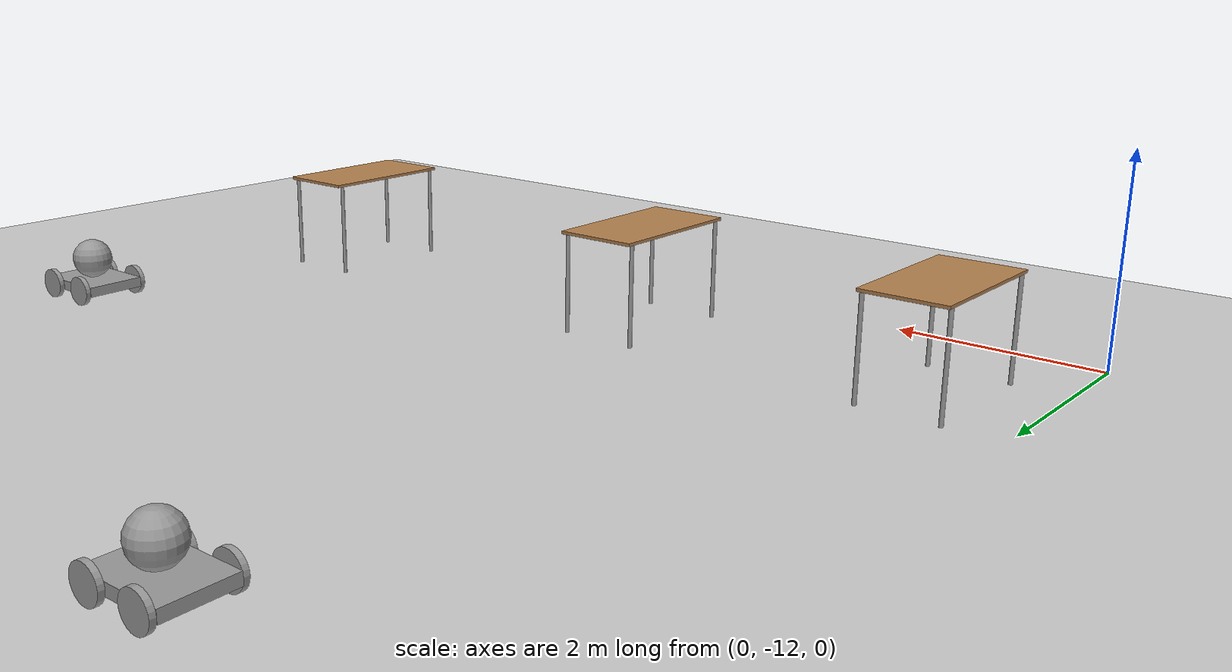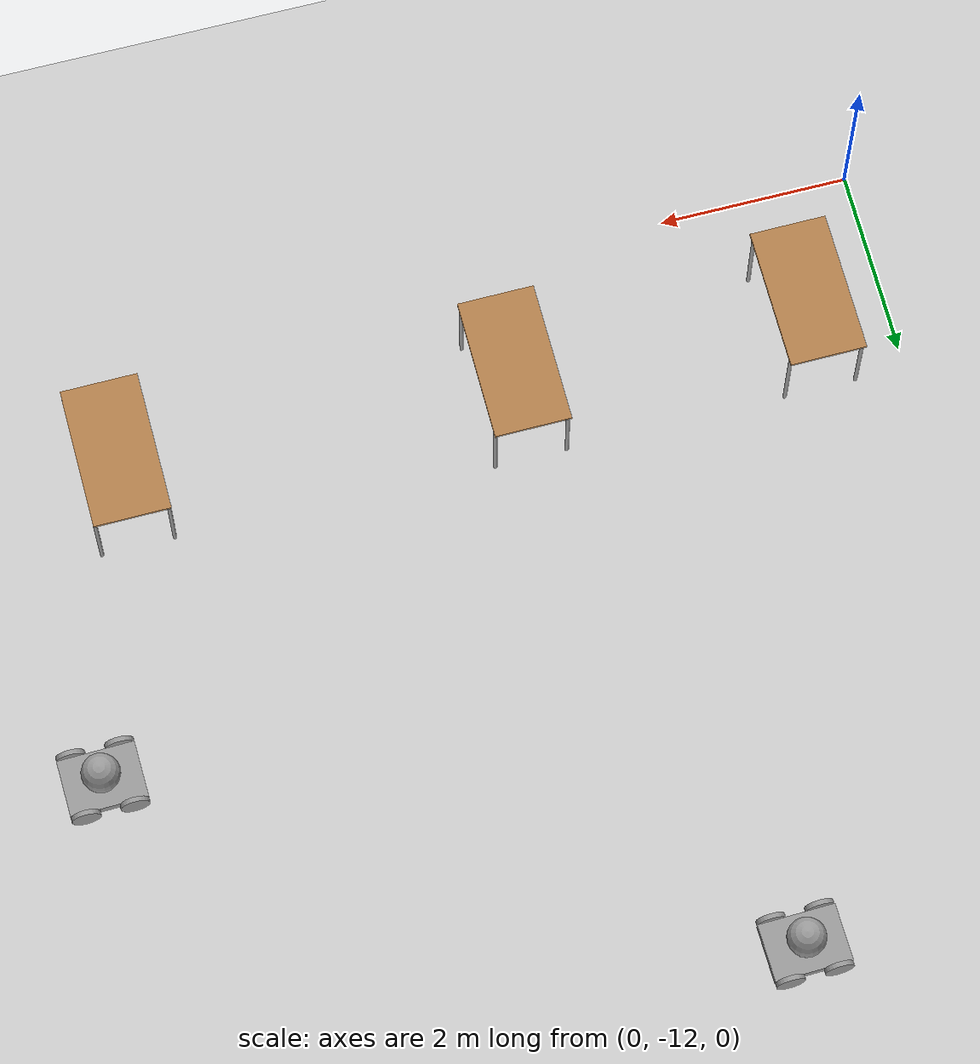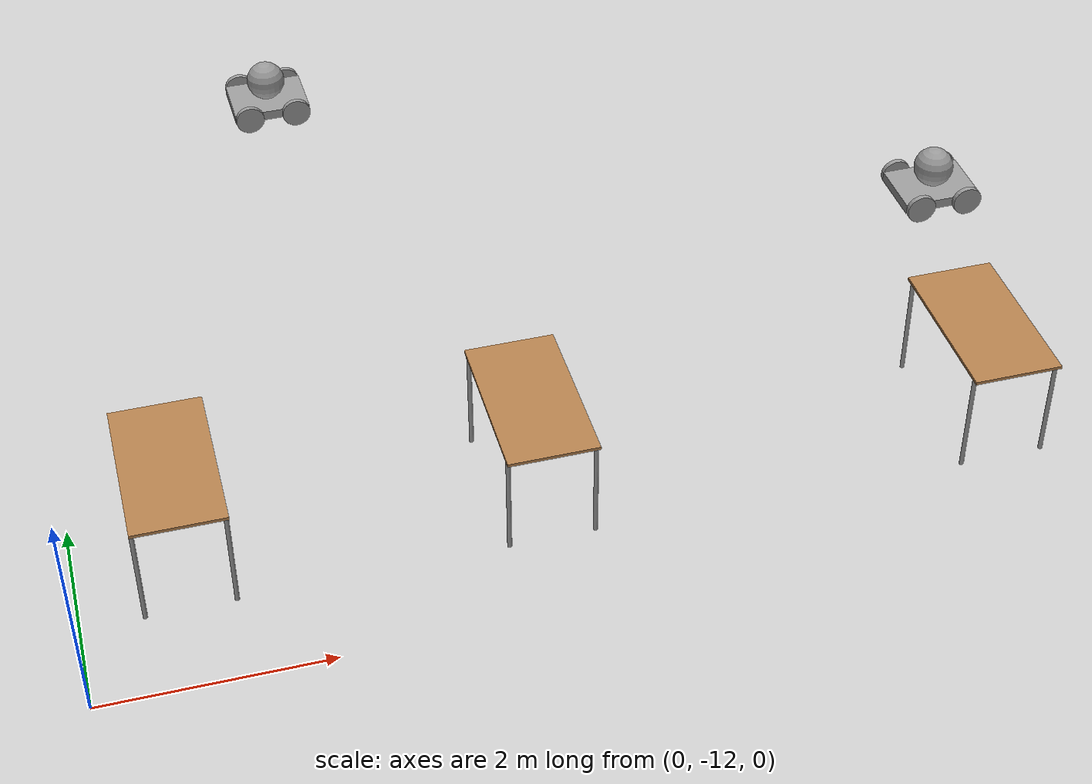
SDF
<sdf version="1.6">
 <world name="default">
  <model name="ground_plane">
   <static>1</static>
   <link name="link">
    <collision name="collision">
     <geometry><plane><normal>0 0 1</normal><size>100 100</size></plane></geometry>
     <surface>
      <contact><collide_bitmask>65535</collide_bitmask></contact>
      <friction><ode><mu>100</mu><mu2>50</mu2></ode></friction>
     </surface>
    </collision>
    <visual name="visual">
     <cast_shadows>0</cast_shadows>
     <geometry><plane><normal>0 0 1</normal><size>100 100</size></plane></geometry>
     <material>
      <script><uri>file://media/materials/scripts/gazebo.material</uri><name>Gazebo/Grey</name></script>
     </material>
    </visual>
   </link>
  </model>
  <model name="HumanoidRobot">
   <link name="link_0">
    <pose>0 0 -0.041667 0 -0 0</pose>
    <inertial>
     <mass>1</mass>
     <inertia>
      <ixx>0.166667</ixx>
      <ixy>0</ixy>
      <ixz>0</ixz>
      <iyy>0.166667</iyy>
      <iyz>0</iyz>
      <izz>0.166667</izz>
     </inertia>
    </inertial>
    <visual name="visual">
     <geometry><box><size>0.8 0.6 0.1</size></box></geometry>
     <material>
      <lighting>1</lighting>
      <script><uri>file://media/materials/scripts/gazebo.material</uri><name>Gazebo/Grey</name></script>
      <shader type="pixel"><normal_map>__default__</normal_map></shader>
      <ambient>0.3 0.3 0.3 1</ambient>
      <diffuse>0.7 0.7 0.7 1</diffuse>
      <specular>0.01 0.01 0.01 1</specular>
      <emissive>0 0 0 1</emissive>
     </material>
    </visual>
    <collision name="collision">
     <geometry><box><size>0.8 0.6 0.1</size></box></geometry>
     <surface>
      <friction>
       <ode><mu>1</mu><mu2>1</mu2><fdir1>0 0 0</fdir1><slip1>0</slip1><slip2>0</slip2></ode>
       <torsional>
        <coefficient>1</coefficient>
        <patch_radius>0</patch_radius>
        <surface_radius>0</surface_radius>
        <use_patch_radius>1</use_patch_radius>
        <ode><slip>0</slip></ode>
       </torsional>
      </friction>
      <bounce><restitution_coefficient>0</restitution_coefficient><threshold>1e+06</threshold></bounce>
      <contact>
       <collide_without_contact>0</collide_without_contact>
       <collide_without_contact_bitmask>1</collide_without_contact_bitmask>
       <collide_bitmask>1</collide_bitmask>
       <ode>
        <soft_cfm>0</soft_cfm>
        <soft_erp>0.2</soft_erp>
        <kp>1e+13</kp>
        <kd>1</kd>
        <max_vel>0.01</max_vel>
        <min_depth>0</min_depth>
       </ode>
       <bullet>
        <split_impulse>1</split_impulse>
        <split_impulse_penetration_threshold>-0.01</split_impulse_penetration_threshold>
        <soft_cfm>0</soft_cfm>
        <soft_erp>0.2</soft_erp>
        <kp>1e+13</kp>
        <kd>1</kd>
       </bullet>
      </contact>
     </surface>
    </collision>
   </link>
   <link name="link_1">
    <pose>-0.25 -0.325014 -0.041667 1.5707 -0 0</pose>
    <inertial>
     <mass>1</mass>
     <inertia><ixx>0.145833</ixx><ixy>0</ixy><ixz>0</ixz><iyy>0.145833</iyy><iyz>0</iyz><izz>0.125</izz></inertia>
    </inertial>
    <visual name="visual">
     <geometry><cylinder><radius>0.15</radius><length>0.05</length></cylinder></geometry>
     <material>
      <lighting>1</lighting>
      <script><uri>file://media/materials/scripts/gazebo.material</uri><name>Gazebo/Grey</name></script>
      <shader type="pixel"><normal_map>__default__</normal_map></shader>
      <ambient>0.3 0.3 0.3 1</ambient>
      <diffuse>0.7 0.7 0.7 1</diffuse>
      <specular>0.01 0.01 0.01 1</specular>
      <emissive>0 0 0 1</emissive>
     </material>
    </visual>
    <collision name="collision">
     <geometry><cylinder><radius>0.15</radius><length>0.05</length></cylinder></geometry>
     <surface>
      <friction>
       <ode><mu>1</mu><mu2>1</mu2><fdir1>0 0 0</fdir1><slip1>0</slip1><slip2>0</slip2></ode>
       <torsional>
        <coefficient>1</coefficient>
        <patch_radius>0</patch_radius>
        <surface_radius>0</surface_radius>
        <use_patch_radius>1</use_patch_radius>
        <ode><slip>0</slip></ode>
       </torsional>
      </friction>
      <bounce><restitution_coefficient>0</restitution_coefficient><threshold>1e+06</threshold></bounce>
      <contact>
       <collide_without_contact>0</collide_without_contact>
       <collide_without_contact_bitmask>1</collide_without_contact_bitmask>
       <collide_bitmask>1</collide_bitmask>
       <ode>
        <soft_cfm>0</soft_cfm>
        <soft_erp>0.2</soft_erp>
        <kp>1e+13</kp>
        <kd>1</kd>
        <max_vel>0.01</max_vel>
        <min_depth>0</min_depth>
       </ode>
       <bullet>
        <split_impulse>1</split_impulse>
        <split_impulse_penetration_threshold>-0.01</split_impulse_penetration_threshold>
        <soft_cfm>0</soft_cfm>
        <soft_erp>0.2</soft_erp>
        <kp>1e+13</kp>
        <kd>1</kd>
       </bullet>
      </contact>
     </surface>
    </collision>
   </link>
   <link name="link_1_clone">
    <pose>-0.25 0.325014 -0.041667 1.5707 -0 0</pose>
    <inertial>
     <mass>1</mass>
     <inertia><ixx>0.145833</ixx><ixy>0</ixy><ixz>0</ixz><iyy>0.145833</iyy><iyz>0</iyz><izz>0.125</izz></inertia>
    </inertial>
    <visual name="visual">
     <geometry><cylinder><radius>0.15</radius><length>0.05</length></cylinder></geometry>
     <material>
      <lighting>1</lighting>
      <script><uri>file://media/materials/scripts/gazebo.material</uri><name>Gazebo/Grey</name></script>
      <shader type="pixel"><normal_map>__default__</normal_map></shader>
      <ambient>0.3 0.3 0.3 1</ambient>
      <diffuse>0.7 0.7 0.7 1</diffuse>
      <specular>0.01 0.01 0.01 1</specular>
      <emissive>0 0 0 1</emissive>
     </material>
    </visual>
    <collision name="collision">
     <geometry><cylinder><radius>0.15</radius><length>0.05</length></cylinder></geometry>
     <surface>
      <friction>
       <ode><mu>1</mu><mu2>1</mu2><fdir1>0 0 0</fdir1><slip1>0</slip1><slip2>0</slip2></ode>
       <torsional>
        <coefficient>1</coefficient>
        <patch_radius>0</patch_radius>
        <surface_radius>0</surface_radius>
        <use_patch_radius>1</use_patch_radius>
        <ode><slip>0</slip></ode>
       </torsional>
      </friction>
      <bounce><restitution_coefficient>0</restitution_coefficient><threshold>1e+06</threshold></bounce>
      <contact>
       <collide_without_contact>0</collide_without_contact>
       <collide_without_contact_bitmask>1</collide_without_contact_bitmask>
       <collide_bitmask>1</collide_bitmask>
       <ode>
        <soft_cfm>0</soft_cfm>
        <soft_erp>0.2</soft_erp>
        <kp>1e+13</kp>
        <kd>1</kd>
        <max_vel>0.01</max_vel>
        <min_depth>0</min_depth>
       </ode>
       <bullet>
        <split_impulse>1</split_impulse>
        <split_impulse_penetration_threshold>-0.01</split_impulse_penetration_threshold>
        <soft_cfm>0</soft_cfm>
        <soft_erp>0.2</soft_erp>
        <kp>1e+13</kp>
        <kd>1</kd>
       </bullet>
      </contact>
     </surface>
    </collision>
   </link>
   <link name="link_1_clone_0">
    <pose>0.25 0.325014 -0.041667 1.5707 -0 0</pose>
    <inertial>
     <mass>1</mass>
     <inertia><ixx>0.145833</ixx><ixy>0</ixy><ixz>0</ixz><iyy>0.145833</iyy><iyz>0</iyz><izz>0.125</izz></inertia>
    </inertial>
    <visual name="visual">
     <geometry><cylinder><radius>0.15</radius><length>0.05</length></cylinder></geometry>
     <material>
      <lighting>1</lighting>
      <script><uri>file://media/materials/scripts/gazebo.material</uri><name>Gazebo/Grey</name></script>
      <shader type="pixel"><normal_map>__default__</normal_map></shader>
      <ambient>0.3 0.3 0.3 1</ambient>
      <diffuse>0.7 0.7 0.7 1</diffuse>
      <specular>0.01 0.01 0.01 1</specular>
      <emissive>0 0 0 1</emissive>
     </material>
    </visual>
    <collision name="collision">
     <geometry><cylinder><radius>0.15</radius><length>0.05</length></cylinder></geometry>
     <surface>
      <friction>
       <ode><mu>1</mu><mu2>1</mu2><fdir1>0 0 0</fdir1><slip1>0</slip1><slip2>0</slip2></ode>
       <torsional>
        <coefficient>1</coefficient>
        <patch_radius>0</patch_radius>
        <surface_radius>0</surface_radius>
        <use_patch_radius>1</use_patch_radius>
        <ode><slip>0</slip></ode>
       </torsional>
      </friction>
      <bounce><restitution_coefficient>0</restitution_coefficient><threshold>1e+06</threshold></bounce>
      <contact>
       <collide_without_contact>0</collide_without_contact>
       <collide_without_contact_bitmask>1</collide_without_contact_bitmask>
       <collide_bitmask>1</collide_bitmask>
       <ode>
        <soft_cfm>0</soft_cfm>
        <soft_erp>0.2</soft_erp>
        <kp>1e+13</kp>
        <kd>1</kd>
        <max_vel>0.01</max_vel>
        <min_depth>0</min_depth>
       </ode>
       <bullet>
        <split_impulse>1</split_impulse>
        <split_impulse_penetration_threshold>-0.01</split_impulse_penetration_threshold>
        <soft_cfm>0</soft_cfm>
        <soft_erp>0.2</soft_erp>
        <kp>1e+13</kp>
        <kd>1</kd>
       </bullet>
      </contact>
     </surface>
    </collision>
   </link>
   <link name="link_1_clone_1">
    <pose>0.25 -0.325014 -0.041667 1.5707 -0 0</pose>
    <inertial>
     <mass>1</mass>
     <inertia><ixx>0.145833</ixx><ixy>0</ixy><ixz>0</ixz><iyy>0.145833</iyy><iyz>0</iyz><izz>0.125</izz></inertia>
    </inertial>
    <visual name="visual">
     <geometry><cylinder><radius>0.15</radius><length>0.05</length></cylinder></geometry>
     <material>
      <lighting>1</lighting>
      <script><uri>file://media/materials/scripts/gazebo.material</uri><name>Gazebo/Grey</name></script>
      <shader type="pixel"><normal_map>__default__</normal_map></shader>
      <ambient>0.3 0.3 0.3 1</ambient>
      <diffuse>0.7 0.7 0.7 1</diffuse>
      <specular>0.01 0.01 0.01 1</specular>
      <emissive>0 0 0 1</emissive>
     </material>
    </visual>
    <collision name="collision">
     <geometry><cylinder><radius>0.15</radius><length>0.05</length></cylinder></geometry>
     <surface>
      <friction>
       <ode><mu>1</mu><mu2>1</mu2><fdir1>0 0 0</fdir1><slip1>0</slip1><slip2>0</slip2></ode>
       <torsional>
        <coefficient>1</coefficient>
        <patch_radius>0</patch_radius>
        <surface_radius>0</surface_radius>
        <use_patch_radius>1</use_patch_radius>
        <ode><slip>0</slip></ode>
       </torsional>
      </friction>
      <bounce><restitution_coefficient>0</restitution_coefficient><threshold>1e+06</threshold></bounce>
      <contact>
       <collide_without_contact>0</collide_without_contact>
       <collide_without_contact_bitmask>1</collide_without_contact_bitmask>
       <collide_bitmask>1</collide_bitmask>
       <ode>
        <soft_cfm>0</soft_cfm>
        <soft_erp>0.2</soft_erp>
        <kp>1e+13</kp>
        <kd>1</kd>
        <max_vel>0.01</max_vel>
        <min_depth>0</min_depth>
       </ode>
       <bullet>
        <split_impulse>1</split_impulse>
        <split_impulse_penetration_threshold>-0.01</split_impulse_penetration_threshold>
        <soft_cfm>0</soft_cfm>
        <soft_erp>0.2</soft_erp>
        <kp>1e+13</kp>
        <kd>1</kd>
       </bullet>
      </contact>
     </surface>
    </collision>
   </link>
   <link name="link_2">
    <pose>0 0 0.208333 0 -0 0</pose>
    <inertial>
     <mass>1</mass>
     <inertia><ixx>0.1</ixx><ixy>0</ixy><ixz>0</ixz><iyy>0.1</iyy><iyz>0</iyz><izz>0.1</izz></inertia>
    </inertial>
    <visual name="visual">
     <geometry><sphere><radius>0.2</radius></sphere></geometry>
     <material>
      <lighting>1</lighting>
      <script><uri>file://media/materials/scripts/gazebo.material</uri><name>Gazebo/Grey</name></script>
      <shader type="pixel"><normal_map>__default__</normal_map></shader>
      <ambient>0.3 0.3 0.3 1</ambient>
      <diffuse>0.7 0.7 0.7 1</diffuse>
      <specular>0.01 0.01 0.01 1</specular>
      <emissive>0 0 0 1</emissive>
     </material>
    </visual>
    <collision name="collision">
     <geometry><sphere><radius>0.2</radius></sphere></geometry>
     <surface>
      <friction>
       <ode><mu>1</mu><mu2>1</mu2><fdir1>0 0 0</fdir1><slip1>0</slip1><slip2>0</slip2></ode>
       <torsional>
        <coefficient>1</coefficient>
        <patch_radius>0</patch_radius>
        <surface_radius>0</surface_radius>
        <use_patch_radius>1</use_patch_radius>
        <ode><slip>0</slip></ode>
       </torsional>
      </friction>
      <bounce><restitution_coefficient>0</restitution_coefficient><threshold>1e+06</threshold></bounce>
      <contact>
       <collide_without_contact>0</collide_without_contact>
       <collide_without_contact_bitmask>1</collide_without_contact_bitmask>
       <collide_bitmask>1</collide_bitmask>
       <ode>
        <soft_cfm>0</soft_cfm>
        <soft_erp>0.2</soft_erp>
        <kp>1e+13</kp>
        <kd>1</kd>
        <max_vel>0.01</max_vel>
        <min_depth>0</min_depth>
       </ode>
       <bullet>
        <split_impulse>1</split_impulse>
        <split_impulse_penetration_threshold>-0.01</split_impulse_penetration_threshold>
        <soft_cfm>0</soft_cfm>
        <soft_erp>0.2</soft_erp>
        <kp>1e+13</kp>
        <kd>1</kd>
       </bullet>
      </contact>
     </surface>
    </collision>
   </link>
   <joint name="link_0_JOINT_0" type="revolute">
    <parent>link_0</parent>
    <child>link_1</child>
    <axis>
     <xyz>0 0 1</xyz>
     <use_parent_model_frame>0</use_parent_model_frame>
     <limit>
      <lower>-1.79769e+308</lower>
      <upper>1.79769e+308</upper>
      <effort>-1</effort>
      <velocity>-1</velocity>
     </limit>
     <dynamics>
      <spring_reference>0</spring_reference>
      <spring_stiffness>0</spring_stiffness>
      <damping>0</damping>
     </dynamics>
    </axis>
    <physics>
     <ode><limit><cfm>0</cfm><erp>0.2</erp></limit><suspension><cfm>0</cfm><erp>0.2</erp></suspension></ode>
    </physics>
   </joint>
   <joint name="link_0_JOINT_1" type="revolute">
    <parent>link_0</parent>
    <child>link_1_clone</child>
    <axis>
     <xyz>0 0 1</xyz>
     <use_parent_model_frame>0</use_parent_model_frame>
     <limit>
      <lower>-1.79769e+308</lower>
      <upper>1.79769e+308</upper>
      <effort>-1</effort>
      <velocity>-1</velocity>
     </limit>
     <dynamics>
      <spring_reference>0</spring_reference>
      <spring_stiffness>0</spring_stiffness>
      <damping>0</damping>
     </dynamics>
    </axis>
    <physics>
     <ode><limit><cfm>0</cfm><erp>0.2</erp></limit><suspension><cfm>0</cfm><erp>0.2</erp></suspension></ode>
    </physics>
   </joint>
   <joint name="link_0_JOINT_2" type="revolute">
    <parent>link_0</parent>
    <child>link_1_clone_0</child>
    <axis>
     <xyz>0 0 1</xyz>
     <use_parent_model_frame>0</use_parent_model_frame>
     <limit>
      <lower>-1.79769e+308</lower>
      <upper>1.79769e+308</upper>
      <effort>-1</effort>
      <velocity>-1</velocity>
     </limit>
     <dynamics>
      <spring_reference>0</spring_reference>
      <spring_stiffness>0</spring_stiffness>
      <damping>0</damping>
     </dynamics>
    </axis>
    <physics>
     <ode><limit><cfm>0</cfm><erp>0.2</erp></limit><suspension><cfm>0</cfm><erp>0.2</erp></suspension></ode>
    </physics>
   </joint>
   <joint name="link_0_JOINT_3" type="revolute">
    <parent>link_0</parent>
    <child>link_1_clone_1</child>
    <axis>
     <xyz>0 0 1</xyz>
     <use_parent_model_frame>0</use_parent_model_frame>
     <limit>
      <lower>-1.79769e+308</lower>
      <upper>1.79769e+308</upper>
      <effort>-1</effort>
      <velocity>-1</velocity>
     </limit>
     <dynamics>
      <spring_reference>0</spring_reference>
      <spring_stiffness>0</spring_stiffness>
      <damping>0</damping>
     </dynamics>
    </axis>
    <physics>
     <ode><limit><cfm>0</cfm><erp>0.2</erp></limit><suspension><cfm>0</cfm><erp>0.2</erp></suspension></ode>
    </physics>
   </joint>
   <joint name="link_0_JOINT_4" type="fixed">
    <parent>link_0</parent>
    <child>link_2</child>
    <physics>
     <ode><limit><cfm>0</cfm><erp>0.2</erp></limit><suspension><cfm>0</cfm><erp>0.2</erp></suspension></ode>
    </physics>
   </joint>
   <static>0</static>
   <pose>2.72252 -4.09584 0.191669 7e-06 -1e-05 0.026245</pose>
  </model>
  <model name="HumanoidRobot_1">
   <link name="link_0">
    <pose>0 0 -0.041667 0 -0 0</pose>
    <inertial>
     <mass>1</mass>
     <inertia>
      <ixx>0.166667</ixx>
      <ixy>0</ixy>
      <ixz>0</ixz>
      <iyy>0.166667</iyy>
      <iyz>0</iyz>
      <izz>0.166667</izz>
     </inertia>
    </inertial>
    <visual name="visual">
     <geometry><box><size>0.8 0.6 0.1</size></box></geometry>
     <material>
      <lighting>1</lighting>
      <script><uri>file://media/materials/scripts/gazebo.material</uri><name>Gazebo/Grey</name></script>
      <shader type="pixel"><normal_map>__default__</normal_map></shader>
      <ambient>0.3 0.3 0.3 1</ambient>
      <diffuse>0.7 0.7 0.7 1</diffuse>
      <specular>0.01 0.01 0.01 1</specular>
      <emissive>0 0 0 1</emissive>
     </material>
    </visual>
    <collision name="collision">
     <geometry><box><size>0.8 0.6 0.1</size></box></geometry>
     <surface>
      <friction>
       <ode><mu>1</mu><mu2>1</mu2><fdir1>0 0 0</fdir1><slip1>0</slip1><slip2>0</slip2></ode>
       <torsional>
        <coefficient>1</coefficient>
        <patch_radius>0</patch_radius>
        <surface_radius>0</surface_radius>
        <use_patch_radius>1</use_patch_radius>
        <ode><slip>0</slip></ode>
       </torsional>
      </friction>
      <bounce><restitution_coefficient>0</restitution_coefficient><threshold>1e+06</threshold></bounce>
      <contact>
       <collide_without_contact>0</collide_without_contact>
       <collide_without_contact_bitmask>1</collide_without_contact_bitmask>
       <collide_bitmask>1</collide_bitmask>
       <ode>
        <soft_cfm>0</soft_cfm>
        <soft_erp>0.2</soft_erp>
        <kp>1e+13</kp>
        <kd>1</kd>
        <max_vel>0.01</max_vel>
        <min_depth>0</min_depth>
       </ode>
       <bullet>
        <split_impulse>1</split_impulse>
        <split_impulse_penetration_threshold>-0.01</split_impulse_penetration_threshold>
        <soft_cfm>0</soft_cfm>
        <soft_erp>0.2</soft_erp>
        <kp>1e+13</kp>
        <kd>1</kd>
       </bullet>
      </contact>
     </surface>
    </collision>
   </link>
   <link name="link_1">
    <pose>-0.25 -0.325014 -0.041667 1.5707 -0 0</pose>
    <inertial>
     <mass>1</mass>
     <inertia><ixx>0.145833</ixx><ixy>0</ixy><ixz>0</ixz><iyy>0.145833</iyy><iyz>0</iyz><izz>0.125</izz></inertia>
    </inertial>
    <visual name="visual">
     <geometry><cylinder><radius>0.15</radius><length>0.05</length></cylinder></geometry>
     <material>
      <lighting>1</lighting>
      <script><uri>file://media/materials/scripts/gazebo.material</uri><name>Gazebo/Grey</name></script>
      <shader type="pixel"><normal_map>__default__</normal_map></shader>
      <ambient>0.3 0.3 0.3 1</ambient>
      <diffuse>0.7 0.7 0.7 1</diffuse>
      <specular>0.01 0.01 0.01 1</specular>
      <emissive>0 0 0 1</emissive>
     </material>
    </visual>
    <collision name="collision">
     <geometry><cylinder><radius>0.15</radius><length>0.05</length></cylinder></geometry>
     <surface>
      <friction>
       <ode><mu>1</mu><mu2>1</mu2><fdir1>0 0 0</fdir1><slip1>0</slip1><slip2>0</slip2></ode>
       <torsional>
        <coefficient>1</coefficient>
        <patch_radius>0</patch_radius>
        <surface_radius>0</surface_radius>
        <use_patch_radius>1</use_patch_radius>
        <ode><slip>0</slip></ode>
       </torsional>
      </friction>
      <bounce><restitution_coefficient>0</restitution_coefficient><threshold>1e+06</threshold></bounce>
      <contact>
       <collide_without_contact>0</collide_without_contact>
       <collide_without_contact_bitmask>1</collide_without_contact_bitmask>
       <collide_bitmask>1</collide_bitmask>
       <ode>
        <soft_cfm>0</soft_cfm>
        <soft_erp>0.2</soft_erp>
        <kp>1e+13</kp>
        <kd>1</kd>
        <max_vel>0.01</max_vel>
        <min_depth>0</min_depth>
       </ode>
       <bullet>
        <split_impulse>1</split_impulse>
        <split_impulse_penetration_threshold>-0.01</split_impulse_penetration_threshold>
        <soft_cfm>0</soft_cfm>
        <soft_erp>0.2</soft_erp>
        <kp>1e+13</kp>
        <kd>1</kd>
       </bullet>
      </contact>
     </surface>
    </collision>
   </link>
   <link name="link_1_clone">
    <pose>-0.25 0.325014 -0.041667 1.5707 -0 0</pose>
    <inertial>
     <mass>1</mass>
     <inertia><ixx>0.145833</ixx><ixy>0</ixy><ixz>0</ixz><iyy>0.145833</iyy><iyz>0</iyz><izz>0.125</izz></inertia>
    </inertial>
    <visual name="visual">
     <geometry><cylinder><radius>0.15</radius><length>0.05</length></cylinder></geometry>
     <material>
      <lighting>1</lighting>
      <script><uri>file://media/materials/scripts/gazebo.material</uri><name>Gazebo/Grey</name></script>
      <shader type="pixel"><normal_map>__default__</normal_map></shader>
      <ambient>0.3 0.3 0.3 1</ambient>
      <diffuse>0.7 0.7 0.7 1</diffuse>
      <specular>0.01 0.01 0.01 1</specular>
      <emissive>0 0 0 1</emissive>
     </material>
    </visual>
    <collision name="collision">
     <geometry><cylinder><radius>0.15</radius><length>0.05</length></cylinder></geometry>
     <surface>
      <friction>
       <ode><mu>1</mu><mu2>1</mu2><fdir1>0 0 0</fdir1><slip1>0</slip1><slip2>0</slip2></ode>
       <torsional>
        <coefficient>1</coefficient>
        <patch_radius>0</patch_radius>
        <surface_radius>0</surface_radius>
        <use_patch_radius>1</use_patch_radius>
        <ode><slip>0</slip></ode>
       </torsional>
      </friction>
      <bounce><restitution_coefficient>0</restitution_coefficient><threshold>1e+06</threshold></bounce>
      <contact>
       <collide_without_contact>0</collide_without_contact>
       <collide_without_contact_bitmask>1</collide_without_contact_bitmask>
       <collide_bitmask>1</collide_bitmask>
       <ode>
        <soft_cfm>0</soft_cfm>
        <soft_erp>0.2</soft_erp>
        <kp>1e+13</kp>
        <kd>1</kd>
        <max_vel>0.01</max_vel>
        <min_depth>0</min_depth>
       </ode>
       <bullet>
        <split_impulse>1</split_impulse>
        <split_impulse_penetration_threshold>-0.01</split_impulse_penetration_threshold>
        <soft_cfm>0</soft_cfm>
        <soft_erp>0.2</soft_erp>
        <kp>1e+13</kp>
        <kd>1</kd>
       </bullet>
      </contact>
     </surface>
    </collision>
   </link>
   <link name="link_1_clone_0">
    <pose>0.25 0.325014 -0.041667 1.5707 -0 0</pose>
    <inertial>
     <mass>1</mass>
     <inertia><ixx>0.145833</ixx><ixy>0</ixy><ixz>0</ixz><iyy>0.145833</iyy><iyz>0</iyz><izz>0.125</izz></inertia>
    </inertial>
    <visual name="visual">
     <geometry><cylinder><radius>0.15</radius><length>0.05</length></cylinder></geometry>
     <material>
      <lighting>1</lighting>
      <script><uri>file://media/materials/scripts/gazebo.material</uri><name>Gazebo/Grey</name></script>
      <shader type="pixel"><normal_map>__default__</normal_map></shader>
      <ambient>0.3 0.3 0.3 1</ambient>
      <diffuse>0.7 0.7 0.7 1</diffuse>
      <specular>0.01 0.01 0.01 1</specular>
      <emissive>0 0 0 1</emissive>
     </material>
    </visual>
    <collision name="collision">
     <geometry><cylinder><radius>0.15</radius><length>0.05</length></cylinder></geometry>
     <surface>
      <friction>
       <ode><mu>1</mu><mu2>1</mu2><fdir1>0 0 0</fdir1><slip1>0</slip1><slip2>0</slip2></ode>
       <torsional>
        <coefficient>1</coefficient>
        <patch_radius>0</patch_radius>
        <surface_radius>0</surface_radius>
        <use_patch_radius>1</use_patch_radius>
        <ode><slip>0</slip></ode>
       </torsional>
      </friction>
      <bounce><restitution_coefficient>0</restitution_coefficient><threshold>1e+06</threshold></bounce>
      <contact>
       <collide_without_contact>0</collide_without_contact>
       <collide_without_contact_bitmask>1</collide_without_contact_bitmask>
       <collide_bitmask>1</collide_bitmask>
       <ode>
        <soft_cfm>0</soft_cfm>
        <soft_erp>0.2</soft_erp>
        <kp>1e+13</kp>
        <kd>1</kd>
        <max_vel>0.01</max_vel>
        <min_depth>0</min_depth>
       </ode>
       <bullet>
        <split_impulse>1</split_impulse>
        <split_impulse_penetration_threshold>-0.01</split_impulse_penetration_threshold>
        <soft_cfm>0</soft_cfm>
        <soft_erp>0.2</soft_erp>
        <kp>1e+13</kp>
        <kd>1</kd>
       </bullet>
      </contact>
     </surface>
    </collision>
   </link>
   <link name="link_1_clone_1">
    <pose>0.25 -0.325014 -0.041667 1.5707 -0 0</pose>
    <inertial>
     <mass>1</mass>
     <inertia><ixx>0.145833</ixx><ixy>0</ixy><ixz>0</ixz><iyy>0.145833</iyy><iyz>0</iyz><izz>0.125</izz></inertia>
    </inertial>
    <visual name="visual">
     <geometry><cylinder><radius>0.15</radius><length>0.05</length></cylinder></geometry>
     <material>
      <lighting>1</lighting>
      <script><uri>file://media/materials/scripts/gazebo.material</uri><name>Gazebo/Grey</name></script>
      <shader type="pixel"><normal_map>__default__</normal_map></shader>
      <ambient>0.3 0.3 0.3 1</ambient>
      <diffuse>0.7 0.7 0.7 1</diffuse>
      <specular>0.01 0.01 0.01 1</specular>
      <emissive>0 0 0 1</emissive>
     </material>
    </visual>
    <collision name="collision">
     <geometry><cylinder><radius>0.15</radius><length>0.05</length></cylinder></geometry>
     <surface>
      <friction>
       <ode><mu>1</mu><mu2>1</mu2><fdir1>0 0 0</fdir1><slip1>0</slip1><slip2>0</slip2></ode>
       <torsional>
        <coefficient>1</coefficient>
        <patch_radius>0</patch_radius>
        <surface_radius>0</surface_radius>
        <use_patch_radius>1</use_patch_radius>
        <ode><slip>0</slip></ode>
       </torsional>
      </friction>
      <bounce><restitution_coefficient>0</restitution_coefficient><threshold>1e+06</threshold></bounce>
      <contact>
       <collide_without_contact>0</collide_without_contact>
       <collide_without_contact_bitmask>1</collide_without_contact_bitmask>
       <collide_bitmask>1</collide_bitmask>
       <ode>
        <soft_cfm>0</soft_cfm>
        <soft_erp>0.2</soft_erp>
        <kp>1e+13</kp>
        <kd>1</kd>
        <max_vel>0.01</max_vel>
        <min_depth>0</min_depth>
       </ode>
       <bullet>
        <split_impulse>1</split_impulse>
        <split_impulse_penetration_threshold>-0.01</split_impulse_penetration_threshold>
        <soft_cfm>0</soft_cfm>
        <soft_erp>0.2</soft_erp>
        <kp>1e+13</kp>
        <kd>1</kd>
       </bullet>
      </contact>
     </surface>
    </collision>
   </link>
   <link name="link_2">
    <pose>0 0 0.208333 0 -0 0</pose>
    <inertial>
     <mass>1</mass>
     <inertia><ixx>0.1</ixx><ixy>0</ixy><ixz>0</ixz><iyy>0.1</iyy><iyz>0</iyz><izz>0.1</izz></inertia>
    </inertial>
    <visual name="visual">
     <geometry><sphere><radius>0.2</radius></sphere></geometry>
     <material>
      <lighting>1</lighting>
      <script><uri>file://media/materials/scripts/gazebo.material</uri><name>Gazebo/Grey</name></script>
      <shader type="pixel"><normal_map>__default__</normal_map></shader>
      <ambient>0.3 0.3 0.3 1</ambient>
      <diffuse>0.7 0.7 0.7 1</diffuse>
      <specular>0.01 0.01 0.01 1</specular>
      <emissive>0 0 0 1</emissive>
     </material>
    </visual>
    <collision name="collision">
     <geometry><sphere><radius>0.2</radius></sphere></geometry>
     <surface>
      <friction>
       <ode><mu>1</mu><mu2>1</mu2><fdir1>0 0 0</fdir1><slip1>0</slip1><slip2>0</slip2></ode>
       <torsional>
        <coefficient>1</coefficient>
        <patch_radius>0</patch_radius>
        <surface_radius>0</surface_radius>
        <use_patch_radius>1</use_patch_radius>
        <ode><slip>0</slip></ode>
       </torsional>
      </friction>
      <bounce><restitution_coefficient>0</restitution_coefficient><threshold>1e+06</threshold></bounce>
      <contact>
       <collide_without_contact>0</collide_without_contact>
       <collide_without_contact_bitmask>1</collide_without_contact_bitmask>
       <collide_bitmask>1</collide_bitmask>
       <ode>
        <soft_cfm>0</soft_cfm>
        <soft_erp>0.2</soft_erp>
        <kp>1e+13</kp>
        <kd>1</kd>
        <max_vel>0.01</max_vel>
        <min_depth>0</min_depth>
       </ode>
       <bullet>
        <split_impulse>1</split_impulse>
        <split_impulse_penetration_threshold>-0.01</split_impulse_penetration_threshold>
        <soft_cfm>0</soft_cfm>
        <soft_erp>0.2</soft_erp>
        <kp>1e+13</kp>
        <kd>1</kd>
       </bullet>
      </contact>
     </surface>
    </collision>
   </link>
   <joint name="link_0_JOINT_0" type="revolute">
    <parent>link_0</parent>
    <child>link_1</child>
    <axis>
     <xyz>0 0 1</xyz>
     <use_parent_model_frame>0</use_parent_model_frame>
     <limit>
      <lower>-1.79769e+308</lower>
      <upper>1.79769e+308</upper>
      <effort>-1</effort>
      <velocity>-1</velocity>
     </limit>
     <dynamics>
      <spring_reference>0</spring_reference>
      <spring_stiffness>0</spring_stiffness>
      <damping>0</damping>
     </dynamics>
    </axis>
    <physics>
     <ode><limit><cfm>0</cfm><erp>0.2</erp></limit><suspension><cfm>0</cfm><erp>0.2</erp></suspension></ode>
    </physics>
   </joint>
   <joint name="link_0_JOINT_1" type="revolute">
    <parent>link_0</parent>
    <child>link_1_clone</child>
    <axis>
     <xyz>0 0 1</xyz>
     <use_parent_model_frame>0</use_parent_model_frame>
     <limit>
      <lower>-1.79769e+308</lower>
      <upper>1.79769e+308</upper>
      <effort>-1</effort>
      <velocity>-1</velocity>
     </limit>
     <dynamics>
      <spring_reference>0</spring_reference>
      <spring_stiffness>0</spring_stiffness>
      <damping>0</damping>
     </dynamics>
    </axis>
    <physics>
     <ode><limit><cfm>0</cfm><erp>0.2</erp></limit><suspension><cfm>0</cfm><erp>0.2</erp></suspension></ode>
    </physics>
   </joint>
   <joint name="link_0_JOINT_2" type="revolute">
    <parent>link_0</parent>
    <child>link_1_clone_0</child>
    <axis>
     <xyz>0 0 1</xyz>
     <use_parent_model_frame>0</use_parent_model_frame>
     <limit>
      <lower>-1.79769e+308</lower>
      <upper>1.79769e+308</upper>
      <effort>-1</effort>
      <velocity>-1</velocity>
     </limit>
     <dynamics>
      <spring_reference>0</spring_reference>
      <spring_stiffness>0</spring_stiffness>
      <damping>0</damping>
     </dynamics>
    </axis>
    <physics>
     <ode><limit><cfm>0</cfm><erp>0.2</erp></limit><suspension><cfm>0</cfm><erp>0.2</erp></suspension></ode>
    </physics>
   </joint>
   <joint name="link_0_JOINT_3" type="revolute">
    <parent>link_0</parent>
    <child>link_1_clone_1</child>
    <axis>
     <xyz>0 0 1</xyz>
     <use_parent_model_frame>0</use_parent_model_frame>
     <limit>
      <lower>-1.79769e+308</lower>
      <upper>1.79769e+308</upper>
      <effort>-1</effort>
      <velocity>-1</velocity>
     </limit>
     <dynamics>
      <spring_reference>0</spring_reference>
      <spring_stiffness>0</spring_stiffness>
      <damping>0</damping>
     </dynamics>
    </axis>
    <physics>
     <ode><limit><cfm>0</cfm><erp>0.2</erp></limit><suspension><cfm>0</cfm><erp>0.2</erp></suspension></ode>
    </physics>
   </joint>
   <joint name="link_0_JOINT_4" type="fixed">
    <parent>link_0</parent>
    <child>link_2</child>
    <physics>
     <ode><limit><cfm>0</cfm><erp>0.2</erp></limit><suspension><cfm>0</cfm><erp>0.2</erp></suspension></ode>
    </physics>
   </joint>
   <static>0</static>
   <pose>9.01789 -7.47156 0.191669 0 -0 0.019985</pose>
  </model>
  <model name="table">
   <static>1</static>
   <link name="link">
    <collision name="surface">
     <pose>0 0 1 0 -0 0</pose>
     <geometry><box><size>1.5 0.8 0.03</size></box></geometry>
     <surface><friction><ode><mu>0.6</mu><mu2>0.6</mu2></ode></friction></surface>
    </collision>
    <visual name="visual1">
     <pose>0 0 1 0 -0 0</pose>
     <geometry><box><size>1.5 0.8 0.03</size></box></geometry>
     <material>
      <script><uri>file://media/materials/scripts/gazebo.material</uri><name>Gazebo/Wood</name></script>
     </material>
    </visual>
    <collision name="front_left_leg">
     <pose>0.68 0.38 0.5 0 -0 0</pose>
     <geometry><cylinder><radius>0.02</radius><length>1</length></cylinder></geometry>
    </collision>
    <visual name="front_left_leg">
     <pose>0.68 0.38 0.5 0 -0 0</pose>
     <geometry><cylinder><radius>0.02</radius><length>1</length></cylinder></geometry>
     <material>
      <script><uri>file://media/materials/scripts/gazebo.material</uri><name>Gazebo/Grey</name></script>
     </material>
    </visual>
    <collision name="front_right_leg">
     <pose>0.68 -0.38 0.5 0 -0 0</pose>
     <geometry><cylinder><radius>0.02</radius><length>1</length></cylinder></geometry>
    </collision>
    <visual name="front_right_leg">
     <pose>0.68 -0.38 0.5 0 -0 0</pose>
     <geometry><cylinder><radius>0.02</radius><length>1</length></cylinder></geometry>
     <material>
      <script><uri>file://media/materials/scripts/gazebo.material</uri><name>Gazebo/Grey</name></script>
     </material>
    </visual>
    <collision name="back_right_leg">
     <pose>-0.68 -0.38 0.5 0 -0 0</pose>
     <geometry><cylinder><radius>0.02</radius><length>1</length></cylinder></geometry>
    </collision>
    <visual name="back_right_leg">
     <pose>-0.68 -0.38 0.5 0 -0 0</pose>
     <geometry><cylinder><radius>0.02</radius><length>1</length></cylinder></geometry>
     <material>
      <script><uri>file://media/materials/scripts/gazebo.material</uri><name>Gazebo/Grey</name></script>
     </material>
    </visual>
    <collision name="back_left_leg">
     <pose>-0.68 0.38 0.5 0 -0 0</pose>
     <geometry><cylinder><radius>0.02</radius><length>1</length></cylinder></geometry>
    </collision>
    <visual name="back_left_leg">
     <pose>-0.68 0.38 0.5 0 -0 0</pose>
     <geometry><cylinder><radius>0.02</radius><length>1</length></cylinder></geometry>
     <material>
      <script><uri>file://media/materials/scripts/gazebo.material</uri><name>Gazebo/Grey</name></script>
     </material>
    </visual>
   </link>
   <pose>0.911215 -10.468 0 0 0 -1.56675</pose>
  </model>
  <model name="table_clone">
   <static>1</static>
   <link name="link">
    <collision name="surface">
     <pose>0 0 1 0 -0 0</pose>
     <geometry><box><size>1.5 0.8 0.03</size></box></geometry>
     <surface><friction><ode><mu>0.6</mu><mu2>0.6</mu2></ode></friction></surface>
    </collision>
    <visual name="visual1">
     <pose>0 0 1 0 -0 0</pose>
     <geometry><box><size>1.5 0.8 0.03</size></box></geometry>
     <material>
      <script><uri>file://media/materials/scripts/gazebo.material</uri><name>Gazebo/Wood</name></script>
     </material>
    </visual>
    <collision name="front_left_leg">
     <pose>0.68 0.38 0.5 0 -0 0</pose>
     <geometry><cylinder><radius>0.02</radius><length>1</length></cylinder></geometry>
    </collision>
    <visual name="front_left_leg">
     <pose>0.68 0.38 0.5 0 -0 0</pose>
     <geometry><cylinder><radius>0.02</radius><length>1</length></cylinder></geometry>
     <material>
      <script><uri>file://media/materials/scripts/gazebo.material</uri><name>Gazebo/Grey</name></script>
     </material>
    </visual>
    <collision name="front_right_leg">
     <pose>0.68 -0.38 0.5 0 -0 0</pose>
     <geometry><cylinder><radius>0.02</radius><length>1</length></cylinder></geometry>
    </collision>
    <visual name="front_right_leg">
     <pose>0.68 -0.38 0.5 0 -0 0</pose>
     <geometry><cylinder><radius>0.02</radius><length>1</length></cylinder></geometry>
     <material>
      <script><uri>file://media/materials/scripts/gazebo.material</uri><name>Gazebo/Grey</name></script>
     </material>
    </visual>
    <collision name="back_right_leg">
     <pose>-0.68 -0.38 0.5 0 -0 0</pose>
     <geometry><cylinder><radius>0.02</radius><length>1</length></cylinder></geometry>
    </collision>
    <visual name="back_right_leg">
     <pose>-0.68 -0.38 0.5 0 -0 0</pose>
     <geometry><cylinder><radius>0.02</radius><length>1</length></cylinder></geometry>
     <material>
      <script><uri>file://media/materials/scripts/gazebo.material</uri><name>Gazebo/Grey</name></script>
     </material>
    </visual>
    <collision name="back_left_leg">
     <pose>-0.68 0.38 0.5 0 -0 0</pose>
     <geometry><cylinder><radius>0.02</radius><length>1</length></cylinder></geometry>
    </collision>
    <visual name="back_left_leg">
     <pose>-0.68 0.38 0.5 0 -0 0</pose>
     <geometry><cylinder><radius>0.02</radius><length>1</length></cylinder></geometry>
     <material>
      <script><uri>file://media/materials/scripts/gazebo.material</uri><name>Gazebo/Grey</name></script>
     </material>
    </visual>
   </link>
   <pose>4 -10.4682 0 0 0 -1.56675</pose>
  </model>
  <model name="table_clone_0">
   <static>1</static>
   <link name="link">
    <collision name="surface">
     <pose>0 0 1 0 -0 0</pose>
     <geometry><box><size>1.5 0.8 0.03</size></box></geometry>
     <surface><friction><ode><mu>0.6</mu><mu2>0.6</mu2></ode></friction></surface>
    </collision>
    <visual name="visual1">
     <pose>0 0 1 0 -0 0</pose>
     <geometry><box><size>1.5 0.8 0.03</size></box></geometry>
     <material>
      <script><uri>file://media/materials/scripts/gazebo.material</uri><name>Gazebo/Wood</name></script>
     </material>
    </visual>
    <collision name="front_left_leg">
     <pose>0.68 0.38 0.5 0 -0 0</pose>
     <geometry><cylinder><radius>0.02</radius><length>1</length></cylinder></geometry>
    </collision>
    <visual name="front_left_leg">
     <pose>0.68 0.38 0.5 0 -0 0</pose>
     <geometry><cylinder><radius>0.02</radius><length>1</length></cylinder></geometry>
     <material>
      <script><uri>file://media/materials/scripts/gazebo.material</uri><name>Gazebo/Grey</name></script>
     </material>
    </visual>
    <collision name="front_right_leg">
     <pose>0.68 -0.38 0.5 0 -0 0</pose>
     <geometry><cylinder><radius>0.02</radius><length>1</length></cylinder></geometry>
    </collision>
    <visual name="front_right_leg">
     <pose>0.68 -0.38 0.5 0 -0 0</pose>
     <geometry><cylinder><radius>0.02</radius><length>1</length></cylinder></geometry>
     <material>
      <script><uri>file://media/materials/scripts/gazebo.material</uri><name>Gazebo/Grey</name></script>
     </material>
    </visual>
    <collision name="back_right_leg">
     <pose>-0.68 -0.38 0.5 0 -0 0</pose>
     <geometry><cylinder><radius>0.02</radius><length>1</length></cylinder></geometry>
    </collision>
    <visual name="back_right_leg">
     <pose>-0.68 -0.38 0.5 0 -0 0</pose>
     <geometry><cylinder><radius>0.02</radius><length>1</length></cylinder></geometry>
     <material>
      <script><uri>file://media/materials/scripts/gazebo.material</uri><name>Gazebo/Grey</name></script>
     </material>
    </visual>
    <collision name="back_left_leg">
     <pose>-0.68 0.38 0.5 0 -0 0</pose>
     <geometry><cylinder><radius>0.02</radius><length>1</length></cylinder></geometry>
    </collision>
    <visual name="back_left_leg">
     <pose>-0.68 0.38 0.5 0 -0 0</pose>
     <geometry><cylinder><radius>0.02</radius><length>1</length></cylinder></geometry>
     <material>
      <script><uri>file://media/materials/scripts/gazebo.material</uri><name>Gazebo/Grey</name></script>
     </material>
    </visual>
   </link>
   <pose>8.11678 -10.5427 0 0 0 -1.56675</pose>
  </model>
 </world>
</sdf>
